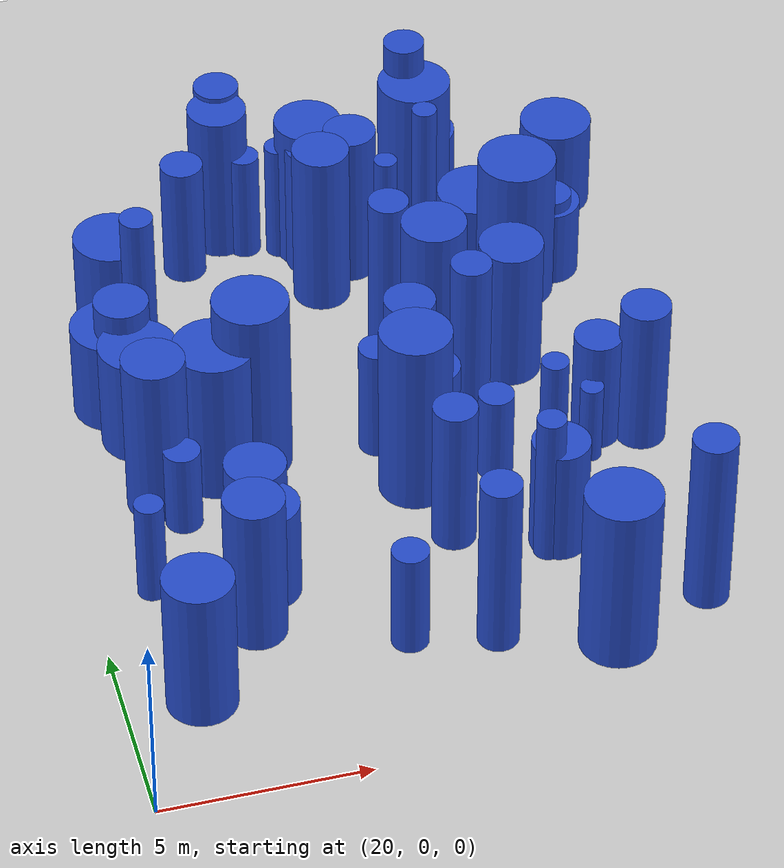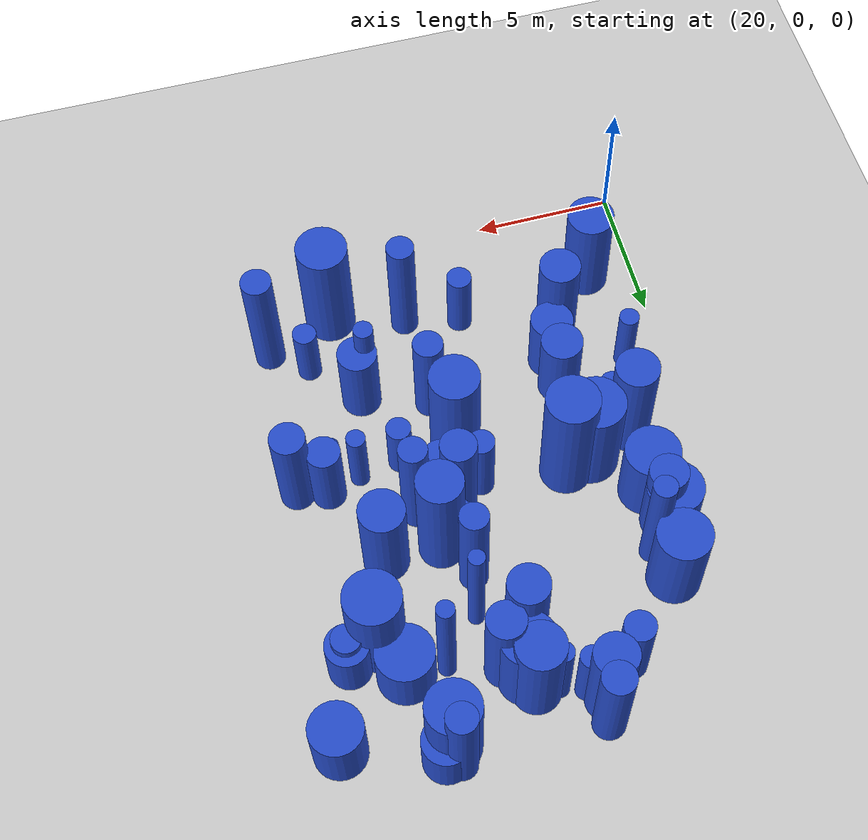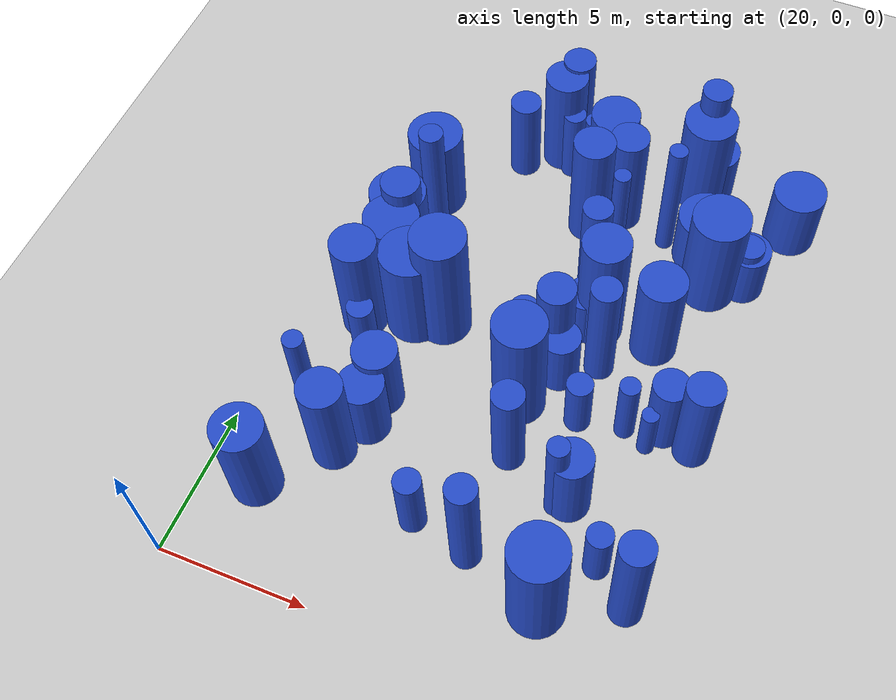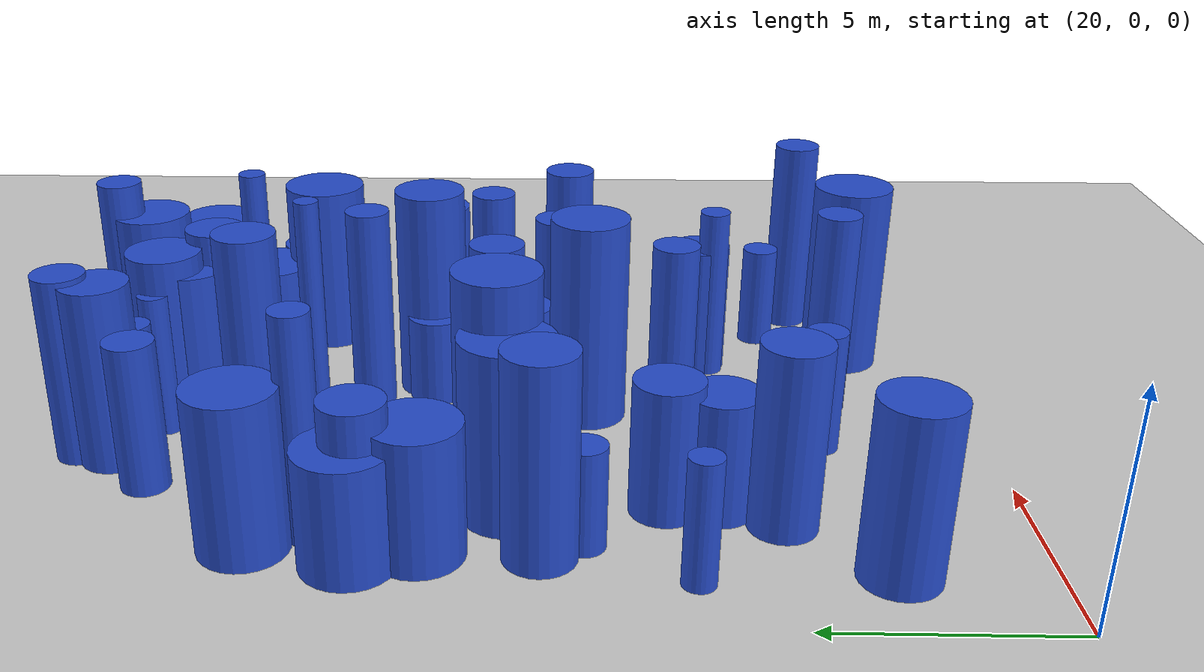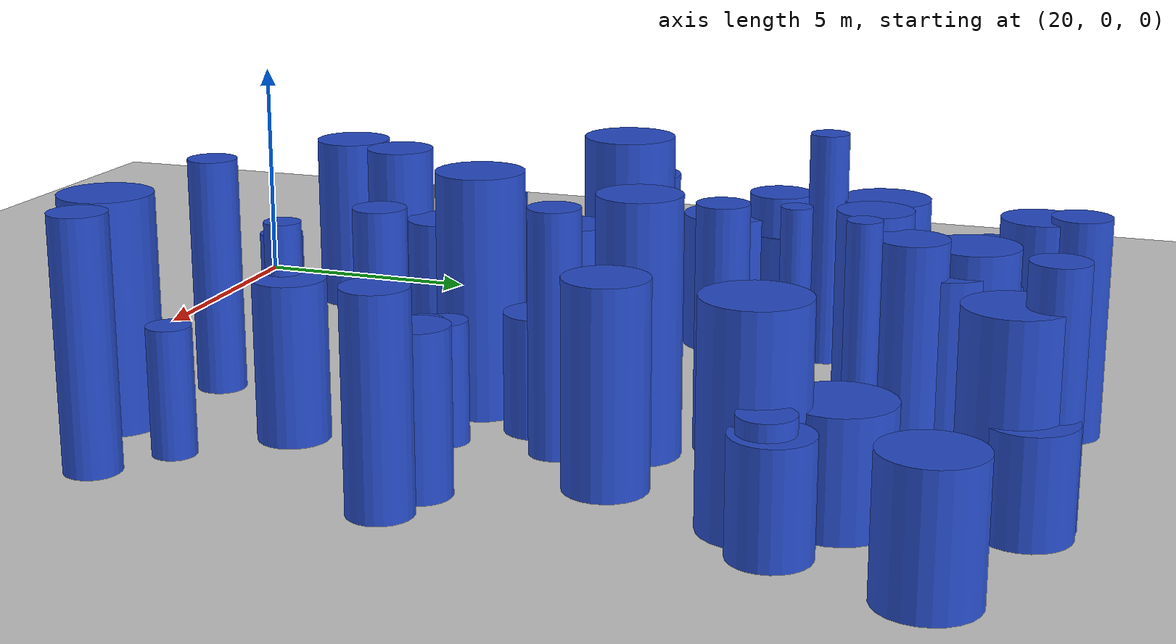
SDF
<sdf version="1.6">
 <world name="default">
  <model name="ground_plane">
   <static>1</static>
   <link name="link">
    <collision name="collision">
     <geometry><plane><normal>0 0 1</normal><size>100 100</size></plane></geometry>
     <surface><friction><ode><mu>100</mu><mu2>50</mu2></ode></friction></surface>
    </collision>
    <visual name="visual">
     <cast_shadows>0</cast_shadows>
     <geometry><plane><normal>0 0 1</normal><size>100 100</size></plane></geometry>
     <material>
      <script><uri>file://media/materials/scripts/gazebo.material</uri><name>Gazebo/Grey</name></script>
     </material>
    </visual>
   </link>
  </model>
  <model name="10">
   <static>0</static>
   <link name="link">
    <inertial>
     <mass>2</mass>
     <inertia><ixx>1.40992</ixx><ixy>0</ixy><ixz>0</ixz><iyy>1.40992</iyy><iyz>0</iyz><izz>0.197939</izz></inertia>
    </inertial>
    <collision name="collision">
     <geometry><cylinder><length>2.80459</length><radius>0.444903</radius></cylinder></geometry>
     <surface><contact><collide_without_contact>1</collide_without_contact></contact></surface>
    </collision>
    <visual name="visual">
     <geometry><cylinder><length>2.80459</length><radius>0.444903</radius></cylinder></geometry>
     <material>
      <script><uri>file://media/materials/scripts/gazebo.material</uri><name>Gazebo/Blue</name></script>
     </material>
    </visual>
    <gravity>0</gravity>
   </link>
   <pose>26.8185 3.79167 1.40229 0 -0 0</pose>
  </model>
  <model name="24">
   <static>0</static>
   <link name="link">
    <inertial>
     <mass>2</mass>
     <inertia><ixx>1.8584</ixx><ixy>0</ixy><ixz>0</ixz><iyy>1.8584</iyy><iyz>0</iyz><izz>0.121468</izz></inertia>
    </inertial>
    <collision name="collision">
     <geometry><cylinder><length>3.2842</length><radius>0.348523</radius></cylinder></geometry>
     <surface><contact><collide_without_contact>1</collide_without_contact></contact></surface>
    </collision>
    <visual name="visual">
     <geometry><cylinder><length>3.2842</length><radius>0.348523</radius></cylinder></geometry>
     <material>
      <script><uri>file://media/materials/scripts/gazebo.material</uri><name>Gazebo/Blue</name></script>
     </material>
    </visual>
    <gravity>0</gravity>
   </link>
   <pose>27.3393 18.4181 1.6421 0 -0 0</pose>
  </model>
  <model name="34">
   <static>0</static>
   <link name="link">
    <inertial>
     <mass>2</mass>
     <inertia><ixx>3.75987</ixx><ixy>0</ixy><ixz>0</ixz><iyy>3.75987</iyy><iyz>0</iyz><izz>0.248556</izz></inertia>
    </inertial>
    <collision name="collision">
     <geometry><cylinder><length>4.6705</length><radius>0.498554</radius></cylinder></geometry>
     <surface><contact><collide_without_contact>1</collide_without_contact></contact></surface>
    </collision>
    <visual name="visual">
     <geometry><cylinder><length>4.6705</length><radius>0.498554</radius></cylinder></geometry>
     <material>
      <script><uri>file://media/materials/scripts/gazebo.material</uri><name>Gazebo/Blue</name></script>
     </material>
    </visual>
    <gravity>0</gravity>
   </link>
   <pose>30.2781 11.09 2.33525 0 -0 0</pose>
  </model>
  <model name="40">
   <static>0</static>
   <link name="link">
    <inertial>
     <mass>2</mass>
     <inertia><ixx>3.12245</ixx><ixy>0</ixy><ixz>0</ixz><iyy>3.12245</iyy><iyz>0</iyz><izz>0.553682</izz></inertia>
    </inertial>
    <collision name="collision">
     <geometry><cylinder><length>4.13202</length><radius>0.744098</radius></cylinder></geometry>
     <surface><contact><collide_without_contact>1</collide_without_contact></contact></surface>
    </collision>
    <visual name="visual">
     <geometry><cylinder><length>4.13202</length><radius>0.744098</radius></cylinder></geometry>
     <material>
      <script><uri>file://media/materials/scripts/gazebo.material</uri><name>Gazebo/Blue</name></script>
     </material>
    </visual>
    <gravity>0</gravity>
   </link>
   <pose>25.9653 19.207 2.06601 0 -0 0</pose>
  </model>
  <model name="41">
   <static>0</static>
   <link name="link">
    <inertial>
     <mass>2</mass>
     <inertia><ixx>3.05764</ixx><ixy>0</ixy><ixz>0</ixz><iyy>3.05764</iyy><iyz>0</iyz><izz>0.702112</izz></inertia>
    </inertial>
    <collision name="collision">
     <geometry><cylinder><length>4.02983</length><radius>0.837921</radius></cylinder></geometry>
     <surface><contact><collide_without_contact>1</collide_without_contact></contact></surface>
    </collision>
    <visual name="visual">
     <geometry><cylinder><length>4.02983</length><radius>0.837921</radius></cylinder></geometry>
     <material>
      <script><uri>file://media/materials/scripts/gazebo.material</uri><name>Gazebo/Blue</name></script>
     </material>
    </visual>
    <gravity>0</gravity>
   </link>
   <pose>28.0717 18.3011 2.01491 0 -0 0</pose>
  </model>
  <model name="42">
   <static>0</static>
   <link name="link">
    <inertial>
     <mass>2</mass>
     <inertia><ixx>1.13765</ixx><ixy>0</ixy><ixz>0</ixz><iyy>1.13765</iyy><iyz>0</iyz><izz>0.440877</izz></inertia>
    </inertial>
    <collision name="collision">
     <geometry><cylinder><length>2.3459</length><radius>0.663986</radius></cylinder></geometry>
     <surface><contact><collide_without_contact>1</collide_without_contact></contact></surface>
    </collision>
    <visual name="visual">
     <geometry><cylinder><length>2.3459</length><radius>0.663986</radius></cylinder></geometry>
     <material>
      <script><uri>file://media/materials/scripts/gazebo.material</uri><name>Gazebo/Blue</name></script>
     </material>
    </visual>
    <gravity>0</gravity>
   </link>
   <pose>29.1505 10.3498 1.17295 0 -0 0</pose>
  </model>
  <model name="46">
   <static>0</static>
   <link name="link">
    <inertial>
     <mass>2</mass>
     <inertia><ixx>1.39822</ixx><ixy>0</ixy><ixz>0</ixz><iyy>1.39822</iyy><iyz>0</iyz><izz>0.114651</izz></inertia>
    </inertial>
    <collision name="collision">
     <geometry><cylinder><length>2.83643</length><radius>0.338602</radius></cylinder></geometry>
     <surface><contact><collide_without_contact>1</collide_without_contact></contact></surface>
    </collision>
    <visual name="visual">
     <geometry><cylinder><length>2.83643</length><radius>0.338602</radius></cylinder></geometry>
     <material>
      <script><uri>file://media/materials/scripts/gazebo.material</uri><name>Gazebo/Blue</name></script>
     </material>
    </visual>
    <gravity>0</gravity>
   </link>
   <pose>31.8364 9.20339 1.41822 0 -0 0</pose>
  </model>
  <model name="57">
   <static>0</static>
   <link name="link">
    <inertial>
     <mass>2</mass>
     <inertia><ixx>2.7647</ixx><ixy>0</ixy><ixz>0</ixz><iyy>2.7647</iyy><iyz>0</iyz><izz>0.695099</izz></inertia>
    </inertial>
    <collision name="collision">
     <geometry><cylinder><length>3.80827</length><radius>0.833726</radius></cylinder></geometry>
     <surface><contact><collide_without_contact>1</collide_without_contact></contact></surface>
    </collision>
    <visual name="visual">
     <geometry><cylinder><length>3.80827</length><radius>0.833726</radius></cylinder></geometry>
     <material>
      <script><uri>file://media/materials/scripts/gazebo.material</uri><name>Gazebo/Blue</name></script>
     </material>
    </visual>
    <gravity>0</gravity>
   </link>
   <pose>21.7704 3.10199 1.90413 0 -0 0</pose>
  </model>
  <model name="62">
   <static>0</static>
   <link name="link">
    <inertial>
     <mass>2</mass>
     <inertia><ixx>3.86289</ixx><ixy>0</ixy><ixz>0</ixz><iyy>3.86289</iyy><iyz>0</iyz><izz>0.080667</izz></inertia>
    </inertial>
    <collision name="collision">
     <geometry><cylinder><length>4.78908</length><radius>0.284019</radius></cylinder></geometry>
     <surface><contact><collide_without_contact>1</collide_without_contact></contact></surface>
    </collision>
    <visual name="visual">
     <geometry><cylinder><length>4.78908</length><radius>0.284019</radius></cylinder></geometry>
     <material>
      <script><uri>file://media/materials/scripts/gazebo.material</uri><name>Gazebo/Blue</name></script>
     </material>
    </visual>
    <gravity>0</gravity>
   </link>
   <pose>29.2941 15.3061 2.39454 0 -0 0</pose>
  </model>
  <model name="71">
   <static>0</static>
   <link name="link">
    <inertial>
     <mass>2</mass>
     <inertia><ixx>2.80373</ixx><ixy>0</ixy><ixz>0</ixz><iyy>2.80373</iyy><iyz>0</iyz><izz>0.629376</izz></inertia>
    </inertial>
    <collision name="collision">
     <geometry><cylinder><length>3.86449</length><radius>0.793332</radius></cylinder></geometry>
     <surface><contact><collide_without_contact>1</collide_without_contact></contact></surface>
    </collision>
    <visual name="visual">
     <geometry><cylinder><length>3.86449</length><radius>0.793332</radius></cylinder></geometry>
     <material>
      <script><uri>file://media/materials/scripts/gazebo.material</uri><name>Gazebo/Blue</name></script>
     </material>
    </visual>
    <gravity>0</gravity>
   </link>
   <pose>31.6922 12.5394 1.93224 0 -0 0</pose>
  </model>
  <model name="73">
   <static>0</static>
   <link name="link">
    <inertial>
     <mass>2</mass>
     <inertia><ixx>3.76472</ixx><ixy>0</ixy><ixz>0</ixz><iyy>3.76472</iyy><iyz>0</iyz><izz>0.246582</izz></inertia>
    </inertial>
    <collision name="collision">
     <geometry><cylinder><length>4.67425</length><radius>0.49657</radius></cylinder></geometry>
     <surface><contact><collide_without_contact>1</collide_without_contact></contact></surface>
    </collision>
    <visual name="visual">
     <geometry><cylinder><length>4.67425</length><radius>0.49657</radius></cylinder></geometry>
     <material>
      <script><uri>file://media/materials/scripts/gazebo.material</uri><name>Gazebo/Blue</name></script>
     </material>
    </visual>
    <gravity>0</gravity>
   </link>
   <pose>28.9884 13.8789 2.33712 0 -0 0</pose>
  </model>
  <model name="74">
   <static>0</static>
   <link name="link">
    <inertial>
     <mass>2</mass>
     <inertia><ixx>1.31675</ixx><ixy>0</ixy><ixz>0</ixz><iyy>1.31675</iyy><iyz>0</iyz><izz>0.987604</izz></inertia>
    </inertial>
    <collision name="collision">
     <geometry><cylinder><length>2.22209</length><radius>0.993783</radius></cylinder></geometry>
     <surface><contact><collide_without_contact>1</collide_without_contact></contact></surface>
    </collision>
    <visual name="visual">
     <geometry><cylinder><length>2.22209</length><radius>0.993783</radius></cylinder></geometry>
     <material>
      <script><uri>file://media/materials/scripts/gazebo.material</uri><name>Gazebo/Blue</name></script>
     </material>
    </visual>
    <gravity>0</gravity>
   </link>
   <pose>32.0302 16.745 1.11105 0 -0 0</pose>
  </model>
  <model name="76">
   <static>0</static>
   <link name="link">
    <inertial>
     <mass>2</mass>
     <inertia><ixx>1.44182</ixx><ixy>0</ixy><ixz>0</ixz><iyy>1.44182</iyy><iyz>0</iyz><izz>0.812802</izz></inertia>
    </inertial>
    <collision name="collision">
     <geometry><cylinder><length>2.49249</length><radius>0.901556</radius></cylinder></geometry>
     <surface><contact><collide_without_contact>1</collide_without_contact></contact></surface>
    </collision>
    <visual name="visual">
     <geometry><cylinder><length>2.49249</length><radius>0.901556</radius></cylinder></geometry>
     <material>
      <script><uri>file://media/materials/scripts/gazebo.material</uri><name>Gazebo/Blue</name></script>
     </material>
    </visual>
    <gravity>0</gravity>
   </link>
   <pose>34.6756 18.6978 1.24624 0 -0 0</pose>
  </model>
  <model name="77">
   <static>0</static>
   <link name="link">
    <inertial>
     <mass>2</mass>
     <inertia><ixx>3.09735</ixx><ixy>0</ixy><ixz>0</ixz><iyy>3.09735</iyy><iyz>0</iyz><izz>0.998419</izz></inertia>
    </inertial>
    <collision name="collision">
     <geometry><cylinder><length>3.94827</length><radius>0.999209</radius></cylinder></geometry>
     <surface><contact><collide_without_contact>1</collide_without_contact></contact></surface>
    </collision>
    <visual name="visual">
     <geometry><cylinder><length>3.94827</length><radius>0.999209</radius></cylinder></geometry>
     <material>
      <script><uri>file://media/materials/scripts/gazebo.material</uri><name>Gazebo/Blue</name></script>
     </material>
    </visual>
    <gravity>0</gravity>
   </link>
   <pose>23.8715 10.5656 1.97414 0 -0 0</pose>
  </model>
  <model name="79">
   <static>0</static>
   <link name="link">
    <inertial>
     <mass>2</mass>
     <inertia><ixx>4.49479</ixx><ixy>0</ixy><ixz>0</ixz><iyy>4.49479</iyy><iyz>0</iyz><izz>0.856333</izz></inertia>
    </inertial>
    <collision name="collision">
     <geometry><cylinder><length>4.93961</length><radius>0.925383</radius></cylinder></geometry>
     <surface><contact><collide_without_contact>1</collide_without_contact></contact></surface>
    </collision>
    <visual name="visual">
     <geometry><cylinder><length>4.93961</length><radius>0.925383</radius></cylinder></geometry>
     <material>
      <script><uri>file://media/materials/scripts/gazebo.material</uri><name>Gazebo/Blue</name></script>
     </material>
    </visual>
    <gravity>0</gravity>
   </link>
   <pose>24.8269 10.7923 2.46981 0 -0 0</pose>
  </model>
  <model name="86">
   <static>0</static>
   <link name="link">
    <inertial>
     <mass>2</mass>
     <inertia><ixx>3.21751</ixx><ixy>0</ixy><ixz>0</ixz><iyy>3.21751</iyy><iyz>0</iyz><izz>0.937434</izz></inertia>
    </inertial>
    <collision name="collision">
     <geometry><cylinder><length>4.06113</length><radius>0.968212</radius></cylinder></geometry>
     <surface><contact><collide_without_contact>1</collide_without_contact></contact></surface>
    </collision>
    <visual name="visual">
     <geometry><cylinder><length>4.06113</length><radius>0.968212</radius></cylinder></geometry>
     <material>
      <script><uri>file://media/materials/scripts/gazebo.material</uri><name>Gazebo/Blue</name></script>
     </material>
    </visual>
    <gravity>0</gravity>
   </link>
   <pose>32.678 15.4378 2.03056 0 -0 0</pose>
  </model>
  <model name="95">
   <static>0</static>
   <link name="link">
    <inertial>
     <mass>2</mass>
     <inertia><ixx>2.48153</ixx><ixy>0</ixy><ixz>0</ixz><iyy>2.48153</iyy><iyz>0</iyz><izz>0.885892</izz></inertia>
    </inertial>
    <collision name="collision">
     <geometry><cylinder><length>3.49736</length><radius>0.941218</radius></cylinder></geometry>
     <surface><contact><collide_without_contact>1</collide_without_contact></contact></surface>
    </collision>
    <visual name="visual">
     <geometry><cylinder><length>3.49736</length><radius>0.941218</radius></cylinder></geometry>
     <material>
      <script><uri>file://media/materials/scripts/gazebo.material</uri><name>Gazebo/Blue</name></script>
     </material>
    </visual>
    <gravity>0</gravity>
   </link>
   <pose>22.5044 15.6831 1.74868 0 -0 0</pose>
  </model>
  <model name="101">
   <static>0</static>
   <link name="link">
    <inertial>
     <mass>2</mass>
     <inertia><ixx>4.34261</ixx><ixy>0</ixy><ixz>0</ixz><iyy>4.34261</iyy><iyz>0</iyz><izz>0.639798</izz></inertia>
    </inertial>
    <collision name="collision">
     <geometry><cylinder><length>4.91287</length><radius>0.799873</radius></cylinder></geometry>
     <surface><contact><collide_without_contact>1</collide_without_contact></contact></surface>
    </collision>
    <visual name="visual">
     <geometry><cylinder><length>4.91287</length><radius>0.799873</radius></cylinder></geometry>
     <material>
      <script><uri>file://media/materials/scripts/gazebo.material</uri><name>Gazebo/Blue</name></script>
     </material>
    </visual>
    <gravity>0</gravity>
   </link>
   <pose>29.7547 12.5373 2.45643 0 -0 0</pose>
  </model>
  <model name="105">
   <static>0</static>
   <link name="link">
    <inertial>
     <mass>2</mass>
     <inertia><ixx>2.86926</ixx><ixy>0</ixy><ixz>0</ixz><iyy>2.86926</iyy><iyz>0</iyz><izz>0.396155</izz></inertia>
    </inertial>
    <collision name="collision">
     <geometry><cylinder><length>4.00339</length><radius>0.629409</radius></cylinder></geometry>
     <surface><contact><collide_without_contact>1</collide_without_contact></contact></surface>
    </collision>
    <visual name="visual">
     <geometry><cylinder><length>4.00339</length><radius>0.629409</radius></cylinder></geometry>
     <material>
      <script><uri>file://media/materials/scripts/gazebo.material</uri><name>Gazebo/Blue</name></script>
     </material>
    </visual>
    <gravity>0</gravity>
   </link>
   <pose>28.7302 10.9599 2.00169 0 -0 0</pose>
  </model>
  <model name="122">
   <static>0</static>
   <link name="link">
    <inertial>
     <mass>2</mass>
     <inertia><ixx>1.49105</ixx><ixy>0</ixy><ixz>0</ixz><iyy>1.49105</iyy><iyz>0</iyz><izz>0.573233</izz></inertia>
    </inertial>
    <collision name="collision">
     <geometry><cylinder><length>2.68823</length><radius>0.757122</radius></cylinder></geometry>
     <surface><contact><collide_without_contact>1</collide_without_contact></contact></surface>
    </collision>
    <visual name="visual">
     <geometry><cylinder><length>2.68823</length><radius>0.757122</radius></cylinder></geometry>
     <material>
      <script><uri>file://media/materials/scripts/gazebo.material</uri><name>Gazebo/Blue</name></script>
     </material>
    </visual>
    <gravity>0</gravity>
   </link>
   <pose>24.1089 6.2856 1.34411 0 -0 0</pose>
  </model>
  <model name="137">
   <static>0</static>
   <link name="link">
    <inertial>
     <mass>2</mass>
     <inertia><ixx>3.64908</ixx><ixy>0</ixy><ixz>0</ixz><iyy>3.64908</iyy><iyz>0</iyz><izz>0.505273</izz></inertia>
    </inertial>
    <collision name="collision">
     <geometry><cylinder><length>4.51428</length><radius>0.710826</radius></cylinder></geometry>
     <surface><contact><collide_without_contact>1</collide_without_contact></contact></surface>
    </collision>
    <visual name="visual">
     <geometry><cylinder><length>4.51428</length><radius>0.710826</radius></cylinder></geometry>
     <material>
      <script><uri>file://media/materials/scripts/gazebo.material</uri><name>Gazebo/Blue</name></script>
     </material>
    </visual>
    <gravity>0</gravity>
   </link>
   <pose>27.9451 16.4643 2.25714 0 -0 0</pose>
  </model>
  <model name="158">
   <static>0</static>
   <link name="link">
    <inertial>
     <mass>2</mass>
     <inertia><ixx>2.88665</ixx><ixy>0</ixy><ixz>0</ixz><iyy>2.88665</iyy><iyz>0</iyz><izz>0.846285</izz></inertia>
    </inertial>
    <collision name="collision">
     <geometry><cylinder><length>3.84461</length><radius>0.919938</radius></cylinder></geometry>
     <surface><contact><collide_without_contact>1</collide_without_contact></contact></surface>
    </collision>
    <visual name="visual">
     <geometry><cylinder><length>3.84461</length><radius>0.919938</radius></cylinder></geometry>
     <material>
      <script><uri>file://media/materials/scripts/gazebo.material</uri><name>Gazebo/Blue</name></script>
     </material>
    </visual>
    <gravity>0</gravity>
   </link>
   <pose>31.1276 19.42 1.92231 0 -0 0</pose>
  </model>
  <model name="159">
   <static>0</static>
   <link name="link">
    <inertial>
     <mass>2</mass>
     <inertia><ixx>4.20125</ixx><ixy>0</ixy><ixz>0</ixz><iyy>4.20125</iyy><iyz>0</iyz><izz>0.767186</izz></inertia>
    </inertial>
    <collision name="collision">
     <geometry><cylinder><length>4.78601</length><radius>0.875891</radius></cylinder></geometry>
     <surface><contact><collide_without_contact>1</collide_without_contact></contact></surface>
    </collision>
    <visual name="visual">
     <geometry><cylinder><length>4.78601</length><radius>0.875891</radius></cylinder></geometry>
     <material>
      <script><uri>file://media/materials/scripts/gazebo.material</uri><name>Gazebo/Blue</name></script>
     </material>
    </visual>
    <gravity>0</gravity>
   </link>
   <pose>28.3136 8.87989 2.39301 0 -0 0</pose>
  </model>
  <model name="184">
   <static>0</static>
   <link name="link">
    <inertial>
     <mass>2</mass>
     <inertia>
      <ixx>0.910136</ixx>
      <ixy>0</ixy>
      <ixz>0</ixz>
      <iyy>0.910136</iyy>
      <iyz>0</iyz>
      <izz>0.443864</izz>
     </inertia>
    </inertial>
    <collision name="collision">
     <geometry><cylinder><length>2.03205</length><radius>0.666231</radius></cylinder></geometry>
     <surface><contact><collide_without_contact>1</collide_without_contact></contact></surface>
    </collision>
    <visual name="visual">
     <geometry><cylinder><length>2.03205</length><radius>0.666231</radius></cylinder></geometry>
     <material>
      <script><uri>file://media/materials/scripts/gazebo.material</uri><name>Gazebo/Blue</name></script>
     </material>
    </visual>
    <gravity>0</gravity>
   </link>
   <pose>29.2743 12.4064 1.01602 0 -0 0</pose>
  </model>
  <model name="199">
   <static>0</static>
   <link name="link">
    <inertial>
     <mass>2</mass>
     <inertia><ixx>1.03314</ixx><ixy>0</ixy><ixz>0</ixz><iyy>1.03314</iyy><iyz>0</iyz><izz>0.190372</izz></inertia>
    </inertial>
    <collision name="collision">
     <geometry><cylinder><length>2.37228</length><radius>0.436316</radius></cylinder></geometry>
     <surface><contact><collide_without_contact>1</collide_without_contact></contact></surface>
    </collision>
    <visual name="visual">
     <geometry><cylinder><length>2.37228</length><radius>0.436316</radius></cylinder></geometry>
     <material>
      <script><uri>file://media/materials/scripts/gazebo.material</uri><name>Gazebo/Blue</name></script>
     </material>
    </visual>
    <gravity>0</gravity>
   </link>
   <pose>30.3164 8.9481 1.18614 0 -0 0</pose>
  </model>
  <model name="234">
   <static>0</static>
   <link name="link">
    <inertial>
     <mass>2</mass>
     <inertia><ixx>1.30881</ixx><ixy>0</ixy><ixz>0</ixz><iyy>1.30881</iyy><iyz>0</iyz><izz>0.123424</izz></inertia>
    </inertial>
    <collision name="collision">
     <geometry><cylinder><length>2.73543</length><radius>0.351317</radius></cylinder></geometry>
     <surface><contact><collide_without_contact>1</collide_without_contact></contact></surface>
    </collision>
    <visual name="visual">
     <geometry><cylinder><length>2.73543</length><radius>0.351317</radius></cylinder></geometry>
     <material>
      <script><uri>file://media/materials/scripts/gazebo.material</uri><name>Gazebo/Blue</name></script>
     </material>
    </visual>
    <gravity>0</gravity>
   </link>
   <pose>21.4625 6.90268 1.36771 0 -0 0</pose>
  </model>
  <model name="236">
   <static>0</static>
   <link name="link">
    <inertial>
     <mass>2</mass>
     <inertia><ixx>1.0157</ixx><ixy>0</ixy><ixz>0</ixz><iyy>1.0157</iyy><iyz>0</iyz><izz>0.548919</izz></inertia>
    </inertial>
    <collision name="collision">
     <geometry><cylinder><length>2.10889</length><radius>0.740891</radius></cylinder></geometry>
     <surface><contact><collide_without_contact>1</collide_without_contact></contact></surface>
    </collision>
    <visual name="visual">
     <geometry><cylinder><length>2.10889</length><radius>0.740891</radius></cylinder></geometry>
     <material>
      <script><uri>file://media/materials/scripts/gazebo.material</uri><name>Gazebo/Blue</name></script>
     </material>
    </visual>
    <gravity>0</gravity>
   </link>
   <pose>33.7389 16.0021 1.05444 0 -0 0</pose>
  </model>
  <model name="240">
   <static>0</static>
   <link name="link">
    <inertial>
     <mass>2</mass>
     <inertia><ixx>1.10607</ixx><ixy>0</ixy><ixz>0</ixz><iyy>1.10607</iyy><iyz>0</iyz><izz>0.179504</izz></inertia>
    </inertial>
    <collision name="collision">
     <geometry><cylinder><length>2.46939</length><radius>0.423679</radius></cylinder></geometry>
     <surface><contact><collide_without_contact>1</collide_without_contact></contact></surface>
    </collision>
    <visual name="visual">
     <geometry><cylinder><length>2.46939</length><radius>0.423679</radius></cylinder></geometry>
     <material>
      <script><uri>file://media/materials/scripts/gazebo.material</uri><name>Gazebo/Blue</name></script>
     </material>
    </visual>
    <gravity>0</gravity>
   </link>
   <pose>32.6033 4.4601 1.23469 0 -0 0</pose>
  </model>
  <model name="269">
   <static>0</static>
   <link name="link">
    <inertial>
     <mass>2</mass>
     <inertia><ixx>2.14955</ixx><ixy>0</ixy><ixz>0</ixz><iyy>2.14955</iyy><iyz>0</iyz><izz>0.453553</izz></inertia>
    </inertial>
    <collision name="collision">
     <geometry><cylinder><length>3.39656</length><radius>0.673464</radius></cylinder></geometry>
     <surface><contact><collide_without_contact>1</collide_without_contact></contact></surface>
    </collision>
    <visual name="visual">
     <geometry><cylinder><length>3.39656</length><radius>0.673464</radius></cylinder></geometry>
     <material>
      <script><uri>file://media/materials/scripts/gazebo.material</uri><name>Gazebo/Blue</name></script>
     </material>
    </visual>
    <gravity>0</gravity>
   </link>
   <pose>22.2403 13.379 1.69828 0 -0 0</pose>
  </model>
  <model name="273">
   <static>0</static>
   <link name="link">
    <inertial>
     <mass>2</mass>
     <inertia><ixx>2.60349</ixx><ixy>0</ixy><ixz>0</ixz><iyy>2.60349</iyy><iyz>0</iyz><izz>0.882825</izz></inertia>
    </inertial>
    <collision name="collision">
     <geometry><cylinder><length>3.60173</length><radius>0.939588</radius></cylinder></geometry>
     <surface><contact><collide_without_contact>1</collide_without_contact></contact></surface>
    </collision>
    <visual name="visual">
     <geometry><cylinder><length>3.60173</length><radius>0.939588</radius></cylinder></geometry>
     <material>
      <script><uri>file://media/materials/scripts/gazebo.material</uri><name>Gazebo/Blue</name></script>
     </material>
    </visual>
    <gravity>0</gravity>
   </link>
   <pose>28.3082 17.8204 1.80087 0 -0 0</pose>
  </model>
  <model name="275">
   <static>0</static>
   <link name="link">
    <inertial>
     <mass>2</mass>
     <inertia><ixx>2.86189</ixx><ixy>0</ixy><ixz>0</ixz><iyy>2.86189</iyy><iyz>0</iyz><izz>0.123678</izz></inertia>
    </inertial>
    <collision name="collision">
     <geometry><cylinder><length>4.09881</length><radius>0.351679</radius></cylinder></geometry>
     <surface><contact><collide_without_contact>1</collide_without_contact></contact></surface>
    </collision>
    <visual name="visual">
     <geometry><cylinder><length>4.09881</length><radius>0.351679</radius></cylinder></geometry>
     <material>
      <script><uri>file://media/materials/scripts/gazebo.material</uri><name>Gazebo/Blue</name></script>
     </material>
    </visual>
    <gravity>0</gravity>
   </link>
   <pose>30.7282 5.86976 2.04941 0 -0 0</pose>
  </model>
  <model name="278">
   <static>0</static>
   <link name="link">
    <inertial>
     <mass>2</mass>
     <inertia><ixx>2.00455</ixx><ixy>0</ixy><ixz>0</ixz><iyy>2.00455</iyy><iyz>0</iyz><izz>0.286481</izz></inertia>
    </inertial>
    <collision name="collision">
     <geometry><cylinder><length>3.34183</length><radius>0.535239</radius></cylinder></geometry>
     <surface><contact><collide_without_contact>1</collide_without_contact></contact></surface>
    </collision>
    <visual name="visual">
     <geometry><cylinder><length>3.34183</length><radius>0.535239</radius></cylinder></geometry>
     <material>
      <script><uri>file://media/materials/scripts/gazebo.material</uri><name>Gazebo/Blue</name></script>
     </material>
    </visual>
    <gravity>0</gravity>
   </link>
   <pose>24.8221 18.2397 1.67092 0 -0 0</pose>
  </model>
  <model name="286">
   <static>0</static>
   <link name="link">
    <inertial>
     <mass>2</mass>
     <inertia>
      <ixx>4.16821</ixx>
      <ixy>0</ixy>
      <ixz>0</ixz>
      <iyy>4.16821</iyy>
      <iyz>0</iyz>
      <izz>0.0955385</izz>
     </inertia>
    </inertial>
    <collision name="collision">
     <geometry><cylinder><length>4.97219</length><radius>0.309093</radius></cylinder></geometry>
     <surface><contact><collide_without_contact>1</collide_without_contact></contact></surface>
    </collision>
    <visual name="visual">
     <geometry><cylinder><length>4.97219</length><radius>0.309093</radius></cylinder></geometry>
     <material>
      <script><uri>file://media/materials/scripts/gazebo.material</uri><name>Gazebo/Blue</name></script>
     </material>
    </visual>
    <gravity>0</gravity>
   </link>
   <pose>30.6765 16.7872 2.48609 0 -0 0</pose>
  </model>
  <model name="297">
   <static>0</static>
   <link name="link">
    <inertial>
     <mass>2</mass>
     <inertia><ixx>1.11124</ixx><ixy>0</ixy><ixz>0</ixz><iyy>1.11124</iyy><iyz>0</iyz><izz>0.26068</izz></inertia>
    </inertial>
    <collision name="collision">
     <geometry><cylinder><length>2.42599</length><radius>0.510568</radius></cylinder></geometry>
     <surface><contact><collide_without_contact>1</collide_without_contact></contact></surface>
    </collision>
    <visual name="visual">
     <geometry><cylinder><length>2.42599</length><radius>0.510568</radius></cylinder></geometry>
     <material>
      <script><uri>file://media/materials/scripts/gazebo.material</uri><name>Gazebo/Blue</name></script>
     </material>
    </visual>
    <gravity>0</gravity>
   </link>
   <pose>33.7222 15.9025 1.21299 0 -0 0</pose>
  </model>
  <model name="300">
   <static>0</static>
   <link name="link">
    <inertial>
     <mass>2</mass>
     <inertia><ixx>1.86662</ixx><ixy>0</ixy><ixz>0</ixz><iyy>1.86662</iyy><iyz>0</iyz><izz>0.4882</izz></inertia>
    </inertial>
    <collision name="collision">
     <geometry><cylinder><length>3.12011</length><radius>0.698713</radius></cylinder></geometry>
     <surface><contact><collide_without_contact>1</collide_without_contact></contact></surface>
    </collision>
    <visual name="visual">
     <geometry><cylinder><length>3.12011</length><radius>0.698713</radius></cylinder></geometry>
     <material>
      <script><uri>file://media/materials/scripts/gazebo.material</uri><name>Gazebo/Blue</name></script>
     </material>
    </visual>
    <gravity>0</gravity>
   </link>
   <pose>31.0632 6.14179 1.56006 0 -0 0</pose>
  </model>
  <model name="309">
   <static>0</static>
   <link name="link">
    <inertial>
     <mass>2</mass>
     <inertia>
      <ixx>0.810787</ixx>
      <ixy>0</ixy>
      <ixz>0</ixz>
      <iyy>0.810787</iyy>
      <iyz>0</iyz>
      <izz>0.0802737</izz>
     </inertia>
    </inertial>
    <collision name="collision">
     <geometry><cylinder><length>2.15033</length><radius>0.283326</radius></cylinder></geometry>
     <surface><contact><collide_without_contact>1</collide_without_contact></contact></surface>
    </collision>
    <visual name="visual">
     <geometry><cylinder><length>2.15033</length><radius>0.283326</radius></cylinder></geometry>
     <material>
      <script><uri>file://media/materials/scripts/gazebo.material</uri><name>Gazebo/Blue</name></script>
     </material>
    </visual>
    <gravity>0</gravity>
   </link>
   <pose>32.6663 8.868 1.07516 0 -0 0</pose>
  </model>
  <model name="311">
   <static>0</static>
   <link name="link">
    <inertial>
     <mass>2</mass>
     <inertia><ixx>3.87991</ixx><ixy>0</ixy><ixz>0</ixz><iyy>3.87991</iyy><iyz>0</iyz><izz>0.243607</izz></inertia>
    </inertial>
    <collision name="collision">
     <geometry><cylinder><length>4.74854</length><radius>0.493566</radius></cylinder></geometry>
     <surface><contact><collide_without_contact>1</collide_without_contact></contact></surface>
    </collision>
    <visual name="visual">
     <geometry><cylinder><length>4.74854</length><radius>0.493566</radius></cylinder></geometry>
     <material>
      <script><uri>file://media/materials/scripts/gazebo.material</uri><name>Gazebo/Blue</name></script>
     </material>
    </visual>
    <gravity>0</gravity>
   </link>
   <pose>28.7957 3.36111 2.37427 0 -0 0</pose>
  </model>
  <model name="312">
   <static>0</static>
   <link name="link">
    <inertial>
     <mass>2</mass>
     <inertia><ixx>3.17619</ixx><ixy>0</ixy><ixz>0</ixz><iyy>3.17619</iyy><iyz>0</iyz><izz>0.322962</izz></inertia>
    </inertial>
    <collision name="collision">
     <geometry><cylinder><length>4.25303</length><radius>0.568298</radius></cylinder></geometry>
     <surface><contact><collide_without_contact>1</collide_without_contact></contact></surface>
    </collision>
    <visual name="visual">
     <geometry><cylinder><length>4.25303</length><radius>0.568298</radius></cylinder></geometry>
     <material>
      <script><uri>file://media/materials/scripts/gazebo.material</uri><name>Gazebo/Blue</name></script>
     </material>
    </visual>
    <gravity>0</gravity>
   </link>
   <pose>26.1356 19.9788 2.12651 0 -0 0</pose>
  </model>
  <model name="314">
   <static>0</static>
   <link name="link">
    <inertial>
     <mass>2</mass>
     <inertia><ixx>1.74002</ixx><ixy>0</ixy><ixz>0</ixz><iyy>1.74002</iyy><iyz>0</iyz><izz>0.549271</izz></inertia>
    </inertial>
    <collision name="collision">
     <geometry><cylinder><length>2.96518</length><radius>0.741128</radius></cylinder></geometry>
     <surface><contact><collide_without_contact>1</collide_without_contact></contact></surface>
    </collision>
    <visual name="visual">
     <geometry><cylinder><length>2.96518</length><radius>0.741128</radius></cylinder></geometry>
     <material>
      <script><uri>file://media/materials/scripts/gazebo.material</uri><name>Gazebo/Blue</name></script>
     </material>
    </visual>
    <gravity>0</gravity>
   </link>
   <pose>24.0803 7.38485 1.48259 0 -0 0</pose>
  </model>
  <model name="315">
   <static>0</static>
   <link name="link">
    <inertial>
     <mass>2</mass>
     <inertia><ixx>3.8581</ixx><ixy>0</ixy><ixz>0</ixz><iyy>3.8581</iyy><iyz>0</iyz><izz>0.834347</izz></inertia>
    </inertial>
    <collision name="collision">
     <geometry><cylinder><length>4.54374</length><radius>0.913426</radius></cylinder></geometry>
     <surface><contact><collide_without_contact>1</collide_without_contact></contact></surface>
    </collision>
    <visual name="visual">
     <geometry><cylinder><length>4.54374</length><radius>0.913426</radius></cylinder></geometry>
     <material>
      <script><uri>file://media/materials/scripts/gazebo.material</uri><name>Gazebo/Blue</name></script>
     </material>
    </visual>
    <gravity>0</gravity>
   </link>
   <pose>31.4065 2.53629 2.27187 0 -0 0</pose>
  </model>
  <model name="340">
   <static>0</static>
   <link name="link">
    <inertial>
     <mass>2</mass>
     <inertia><ixx>2.41791</ixx><ixy>0</ixy><ixz>0</ixz><iyy>2.41791</iyy><iyz>0</iyz><izz>0.119028</izz></inertia>
    </inertial>
    <collision name="collision">
     <geometry><cylinder><length>3.7617</length><radius>0.345005</radius></cylinder></geometry>
     <surface><contact><collide_without_contact>1</collide_without_contact></contact></surface>
    </collision>
    <visual name="visual">
     <geometry><cylinder><length>3.7617</length><radius>0.345005</radius></cylinder></geometry>
     <material>
      <script><uri>file://media/materials/scripts/gazebo.material</uri><name>Gazebo/Blue</name></script>
     </material>
    </visual>
    <gravity>0</gravity>
   </link>
   <pose>28.6657 10.9347 1.88085 0 -0 0</pose>
  </model>
  <model name="341">
   <static>0</static>
   <link name="link">
    <inertial>
     <mass>2</mass>
     <inertia><ixx>1.00455</ixx><ixy>0</ixy><ixz>0</ixz><iyy>1.00455</iyy><iyz>0</iyz><izz>0.673266</izz></inertia>
    </inertial>
    <collision name="collision">
     <geometry><cylinder><length>2.00187</length><radius>0.820528</radius></cylinder></geometry>
     <surface><contact><collide_without_contact>1</collide_without_contact></contact></surface>
    </collision>
    <visual name="visual">
     <geometry><cylinder><length>2.00187</length><radius>0.820528</radius></cylinder></geometry>
     <material>
      <script><uri>file://media/materials/scripts/gazebo.material</uri><name>Gazebo/Blue</name></script>
     </material>
    </visual>
    <gravity>0</gravity>
   </link>
   <pose>31.4577 19.7862 1.00094 0 -0 0</pose>
  </model>
  <model name="370">
   <static>0</static>
   <link name="link">
    <inertial>
     <mass>2</mass>
     <inertia><ixx>3.70512</ixx><ixy>0</ixy><ixz>0</ixz><iyy>3.70512</iyy><iyz>0</iyz><izz>0.269616</izz></inertia>
    </inertial>
    <collision name="collision">
     <geometry><cylinder><length>4.62838</length><radius>0.519246</radius></cylinder></geometry>
     <surface><contact><collide_without_contact>1</collide_without_contact></contact></surface>
    </collision>
    <visual name="visual">
     <geometry><cylinder><length>4.62838</length><radius>0.519246</radius></cylinder></geometry>
     <material>
      <script><uri>file://media/materials/scripts/gazebo.material</uri><name>Gazebo/Blue</name></script>
     </material>
    </visual>
    <gravity>0</gravity>
   </link>
   <pose>31.0359 20.0752 2.31419 0 -0 0</pose>
  </model>
  <model name="373">
   <static>0</static>
   <link name="link">
    <inertial>
     <mass>2</mass>
     <inertia><ixx>4.05482</ixx><ixy>0</ixy><ixz>0</ixz><iyy>4.05482</iyy><iyz>0</iyz><izz>0.16693</izz></inertia>
    </inertial>
    <collision name="collision">
     <geometry><cylinder><length>4.8814</length><radius>0.408571</radius></cylinder></geometry>
     <surface><contact><collide_without_contact>1</collide_without_contact></contact></surface>
    </collision>
    <visual name="visual">
     <geometry><cylinder><length>4.8814</length><radius>0.408571</radius></cylinder></geometry>
     <material>
      <script><uri>file://media/materials/scripts/gazebo.material</uri><name>Gazebo/Blue</name></script>
     </material>
    </visual>
    <gravity>0</gravity>
   </link>
   <pose>22.9269 14.5438 2.4407 0 -0 0</pose>
  </model>
  <model name="381">
   <static>0</static>
   <link name="link">
    <inertial>
     <mass>2</mass>
     <inertia><ixx>3.26343</ixx><ixy>0</ixy><ixz>0</ixz><iyy>3.26343</iyy><iyz>0</iyz><izz>0.433169</izz></inertia>
    </inertial>
    <collision name="collision">
     <geometry><cylinder><length>4.27564</length><radius>0.658155</radius></cylinder></geometry>
     <surface><contact><collide_without_contact>1</collide_without_contact></contact></surface>
    </collision>
    <visual name="visual">
     <geometry><cylinder><length>4.27564</length><radius>0.658155</radius></cylinder></geometry>
     <material>
      <script><uri>file://media/materials/scripts/gazebo.material</uri><name>Gazebo/Blue</name></script>
     </material>
    </visual>
    <gravity>0</gravity>
   </link>
   <pose>28.9003 17.3263 2.13782 0 -0 0</pose>
  </model>
  <model name="388">
   <static>0</static>
   <link name="link">
    <inertial>
     <mass>2</mass>
     <inertia><ixx>3.99006</ixx><ixy>0</ixy><ixz>0</ixz><iyy>3.99006</iyy><iyz>0</iyz><izz>0.2924</izz></inertia>
    </inertial>
    <collision name="collision">
     <geometry><cylinder><length>4.80241</length><radius>0.540741</radius></cylinder></geometry>
     <surface><contact><collide_without_contact>1</collide_without_contact></contact></surface>
    </collision>
    <visual name="visual">
     <geometry><cylinder><length>4.80241</length><radius>0.540741</radius></cylinder></geometry>
     <material>
      <script><uri>file://media/materials/scripts/gazebo.material</uri><name>Gazebo/Blue</name></script>
     </material>
    </visual>
    <gravity>0</gravity>
   </link>
   <pose>33.8635 3.51637 2.40121 0 -0 0</pose>
  </model>
  <model name="392">
   <static>0</static>
   <link name="link">
    <inertial>
     <mass>2</mass>
     <inertia><ixx>2.89318</ixx><ixy>0</ixy><ixz>0</ixz><iyy>2.89318</iyy><iyz>0</iyz><izz>0.372988</izz></inertia>
    </inertial>
    <collision name="collision">
     <geometry><cylinder><length>4.0299</length><radius>0.610727</radius></cylinder></geometry>
     <surface><contact><collide_without_contact>1</collide_without_contact></contact></surface>
    </collision>
    <visual name="visual">
     <geometry><cylinder><length>4.0299</length><radius>0.610727</radius></cylinder></geometry>
     <material>
      <script><uri>file://media/materials/scripts/gazebo.material</uri><name>Gazebo/Blue</name></script>
     </material>
    </visual>
    <gravity>0</gravity>
   </link>
   <pose>34.0693 9.28351 2.01495 0 -0 0</pose>
  </model>
  <model name="408">
   <static>0</static>
   <link name="link">
    <inertial>
     <mass>2</mass>
     <inertia><ixx>2.82038</ixx><ixy>0</ixy><ixz>0</ixz><iyy>2.82038</iyy><iyz>0</iyz><izz>0.284659</izz></inertia>
    </inertial>
    <collision name="collision">
     <geometry><cylinder><length>4.00853</length><radius>0.533535</radius></cylinder></geometry>
     <surface><contact><collide_without_contact>1</collide_without_contact></contact></surface>
    </collision>
    <visual name="visual">
     <geometry><cylinder><length>4.00853</length><radius>0.533535</radius></cylinder></geometry>
     <material>
      <script><uri>file://media/materials/scripts/gazebo.material</uri><name>Gazebo/Blue</name></script>
     </material>
    </visual>
    <gravity>0</gravity>
   </link>
   <pose>28.7331 6.93651 2.00426 0 -0 0</pose>
  </model>
  <model name="414">
   <static>0</static>
   <link name="link">
    <inertial>
     <mass>2</mass>
     <inertia><ixx>1.561</ixx><ixy>0</ixy><ixz>0</ixz><iyy>1.561</iyy><iyz>0</iyz><izz>0.974143</izz></inertia>
    </inertial>
    <collision name="collision">
     <geometry><cylinder><length>2.53842</length><radius>0.986987</radius></cylinder></geometry>
     <surface><contact><collide_without_contact>1</collide_without_contact></contact></surface>
    </collision>
    <visual name="visual">
     <geometry><cylinder><length>2.53842</length><radius>0.986987</radius></cylinder></geometry>
     <material>
      <script><uri>file://media/materials/scripts/gazebo.material</uri><name>Gazebo/Blue</name></script>
     </material>
    </visual>
    <gravity>0</gravity>
   </link>
   <pose>21.984 13.5625 1.26921 0 -0 0</pose>
  </model>
  <model name="426">
   <static>0</static>
   <link name="link">
    <inertial>
     <mass>2</mass>
     <inertia><ixx>1.53748</ixx><ixy>0</ixy><ixz>0</ixz><iyy>1.53748</iyy><iyz>0</iyz><izz>0.15681</izz></inertia>
    </inertial>
    <collision name="collision">
     <geometry><cylinder><length>2.95879</length><radius>0.395992</radius></cylinder></geometry>
     <surface><contact><collide_without_contact>1</collide_without_contact></contact></surface>
    </collision>
    <visual name="visual">
     <geometry><cylinder><length>2.95879</length><radius>0.395992</radius></cylinder></geometry>
     <material>
      <script><uri>file://media/materials/scripts/gazebo.material</uri><name>Gazebo/Blue</name></script>
     </material>
    </visual>
    <gravity>0</gravity>
   </link>
   <pose>26.4909 18.6837 1.47939 0 -0 0</pose>
  </model>
  <model name="439">
   <static>0</static>
   <link name="link">
    <inertial>
     <mass>2</mass>
     <inertia><ixx>1.77069</ixx><ixy>0</ixy><ixz>0</ixz><iyy>1.77069</iyy><iyz>0</iyz><izz>0.352179</izz></inertia>
    </inertial>
    <collision name="collision">
     <geometry><cylinder><length>3.09316</length><radius>0.593447</radius></cylinder></geometry>
     <surface><contact><collide_without_contact>1</collide_without_contact></contact></surface>
    </collision>
    <visual name="visual">
     <geometry><cylinder><length>3.09316</length><radius>0.593447</radius></cylinder></geometry>
     <material>
      <script><uri>file://media/materials/scripts/gazebo.material</uri><name>Gazebo/Blue</name></script>
     </material>
    </visual>
    <gravity>0</gravity>
   </link>
   <pose>33.0116 9.56746 1.54658 0 -0 0</pose>
  </model>
  <model name="443">
   <static>0</static>
   <link name="link">
    <inertial>
     <mass>2</mass>
     <inertia><ixx>1.85936</ixx><ixy>0</ixy><ixz>0</ixz><iyy>1.85936</iyy><iyz>0</iyz><izz>0.931316</izz></inertia>
    </inertial>
    <collision name="collision">
     <geometry><cylinder><length>2.89175</length><radius>0.965047</radius></cylinder></geometry>
     <surface><contact><collide_without_contact>1</collide_without_contact></contact></surface>
    </collision>
    <visual name="visual">
     <geometry><cylinder><length>2.89175</length><radius>0.965047</radius></cylinder></geometry>
     <material>
      <script><uri>file://media/materials/scripts/gazebo.material</uri><name>Gazebo/Blue</name></script>
     </material>
    </visual>
    <gravity>0</gravity>
   </link>
   <pose>22.3764 12.2617 1.44587 0 -0 0</pose>
  </model>
  <model name="446">
   <static>0</static>
   <link name="link">
    <inertial>
     <mass>2</mass>
     <inertia>
      <ixx>0.949291</ixx>
      <ixy>0</ixy>
      <ixz>0</ixz>
      <iyy>0.949291</iyy>
      <iyz>0</iyz>
      <izz>0.200054</izz>
     </inertia>
    </inertial>
    <collision name="collision">
     <geometry><cylinder><length>2.25734</length><radius>0.447274</radius></cylinder></geometry>
     <surface><contact><collide_without_contact>1</collide_without_contact></contact></surface>
    </collision>
    <visual name="visual">
     <geometry><cylinder><length>2.25734</length><radius>0.447274</radius></cylinder></geometry>
     <material>
      <script><uri>file://media/materials/scripts/gazebo.material</uri><name>Gazebo/Blue</name></script>
     </material>
    </visual>
    <gravity>0</gravity>
   </link>
   <pose>22.7076 9.03945 1.12867 0 -0 0</pose>
  </model>
  <model name="467">
   <static>0</static>
   <link name="link">
    <inertial>
     <mass>2</mass>
     <inertia><ixx>3.56607</ixx><ixy>0</ixy><ixz>0</ixz><iyy>3.56607</iyy><iyz>0</iyz><izz>0.581564</izz></inertia>
    </inertial>
    <collision name="collision">
     <geometry><cylinder><length>4.43303</length><radius>0.762603</radius></cylinder></geometry>
     <surface><contact><collide_without_contact>1</collide_without_contact></contact></surface>
    </collision>
    <visual name="visual">
     <geometry><cylinder><length>4.43303</length><radius>0.762603</radius></cylinder></geometry>
     <material>
      <script><uri>file://media/materials/scripts/gazebo.material</uri><name>Gazebo/Blue</name></script>
     </material>
    </visual>
    <gravity>0</gravity>
   </link>
   <pose>22.2854 9.9014 2.21652 0 -0 0</pose>
  </model>
  <model name="475">
   <static>0</static>
   <link name="link">
    <inertial>
     <mass>2</mass>
     <inertia><ixx>1.66586</ixx><ixy>0</ixy><ixz>0</ixz><iyy>1.66586</iyy><iyz>0</iyz><izz>0.212355</izz></inertia>
    </inertial>
    <collision name="collision">
     <geometry><cylinder><length>3.0591</length><radius>0.46082</radius></cylinder></geometry>
     <surface><contact><collide_without_contact>1</collide_without_contact></contact></surface>
    </collision>
    <visual name="visual">
     <geometry><cylinder><length>3.0591</length><radius>0.46082</radius></cylinder></geometry>
     <material>
      <script><uri>file://media/materials/scripts/gazebo.material</uri><name>Gazebo/Blue</name></script>
     </material>
    </visual>
    <gravity>0</gravity>
   </link>
   <pose>27.8292 10.5308 1.52955 0 -0 0</pose>
  </model>
  <model name="496">
   <static>0</static>
   <link name="link">
    <inertial>
     <mass>2</mass>
     <inertia><ixx>3.00326</ixx><ixy>0</ixy><ixz>0</ixz><iyy>3.00326</iyy><iyz>0</iyz><izz>0.526887</izz></inertia>
    </inertial>
    <collision name="collision">
     <geometry><cylinder><length>4.05449</length><radius>0.72587</radius></cylinder></geometry>
     <surface><contact><collide_without_contact>1</collide_without_contact></contact></surface>
    </collision>
    <visual name="visual">
     <geometry><cylinder><length>4.05449</length><radius>0.72587</radius></cylinder></geometry>
     <material>
      <script><uri>file://media/materials/scripts/gazebo.material</uri><name>Gazebo/Blue</name></script>
     </material>
    </visual>
    <gravity>0</gravity>
   </link>
   <pose>23.5075 5.05438 2.02725 0 -0 0</pose>
  </model>
 </world>
</sdf>
